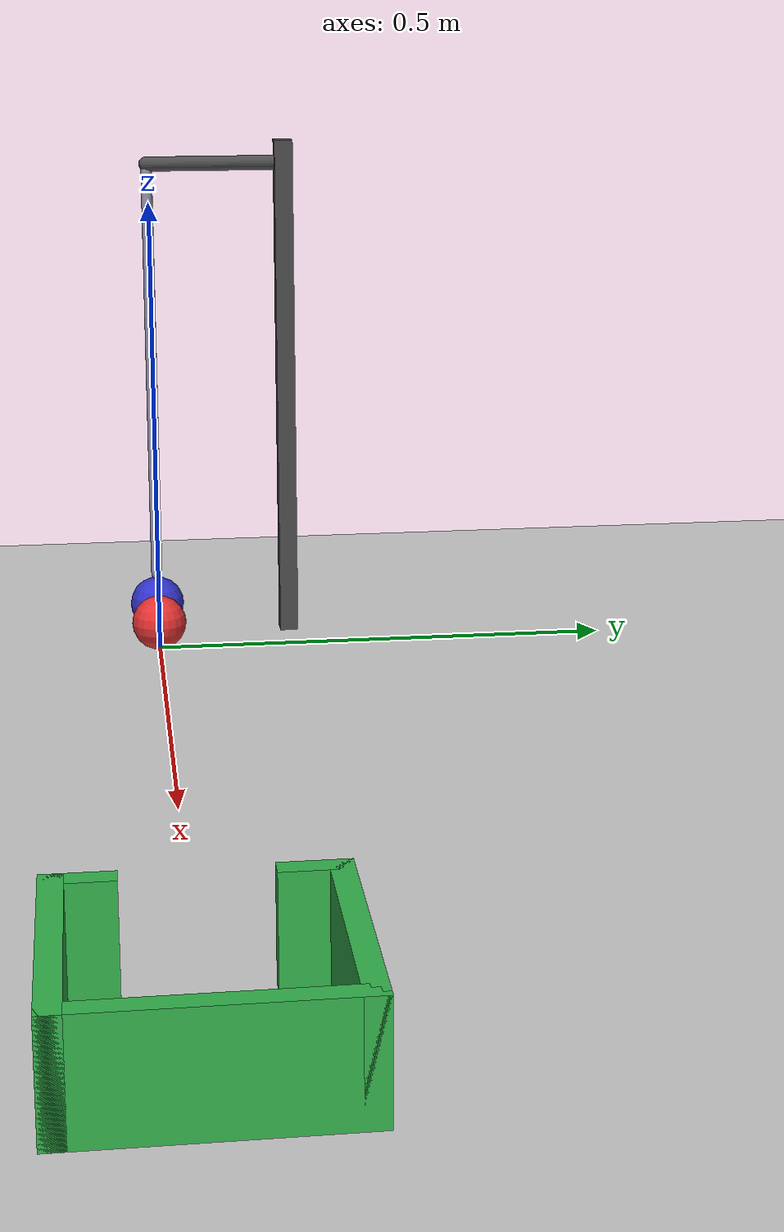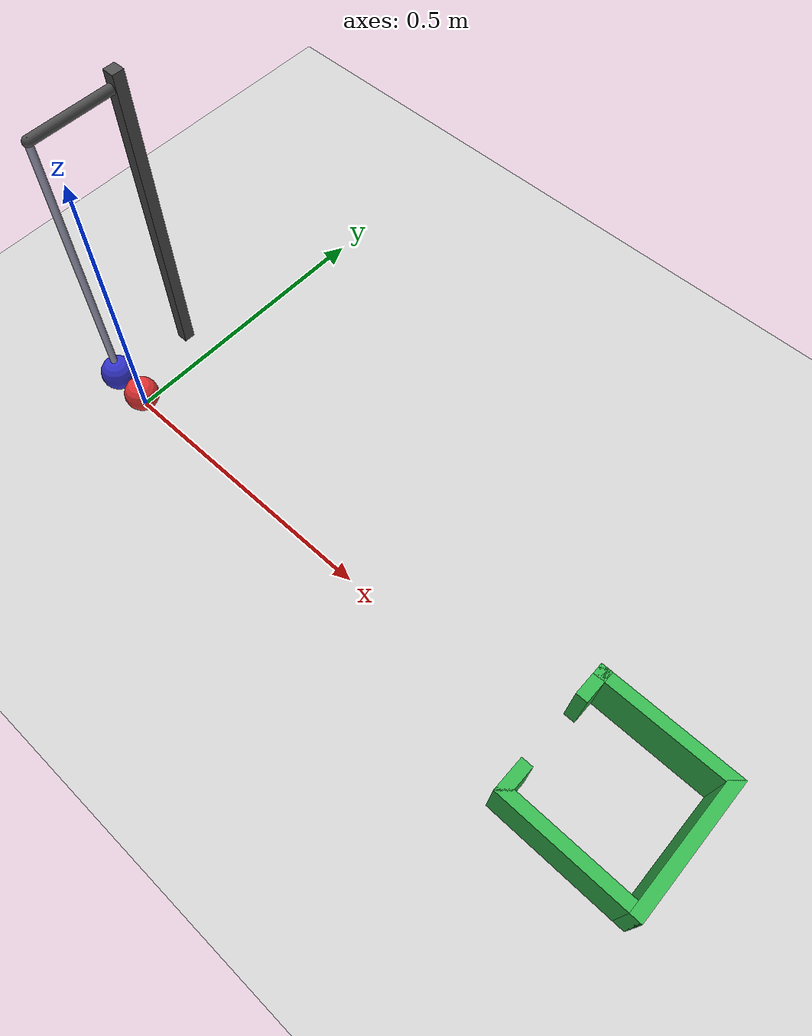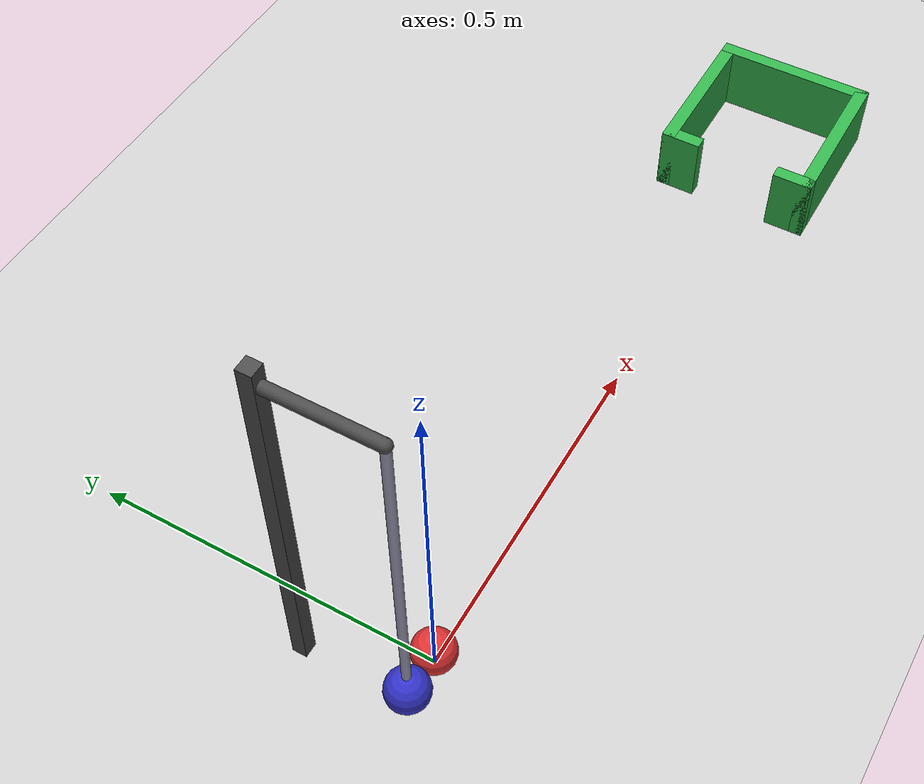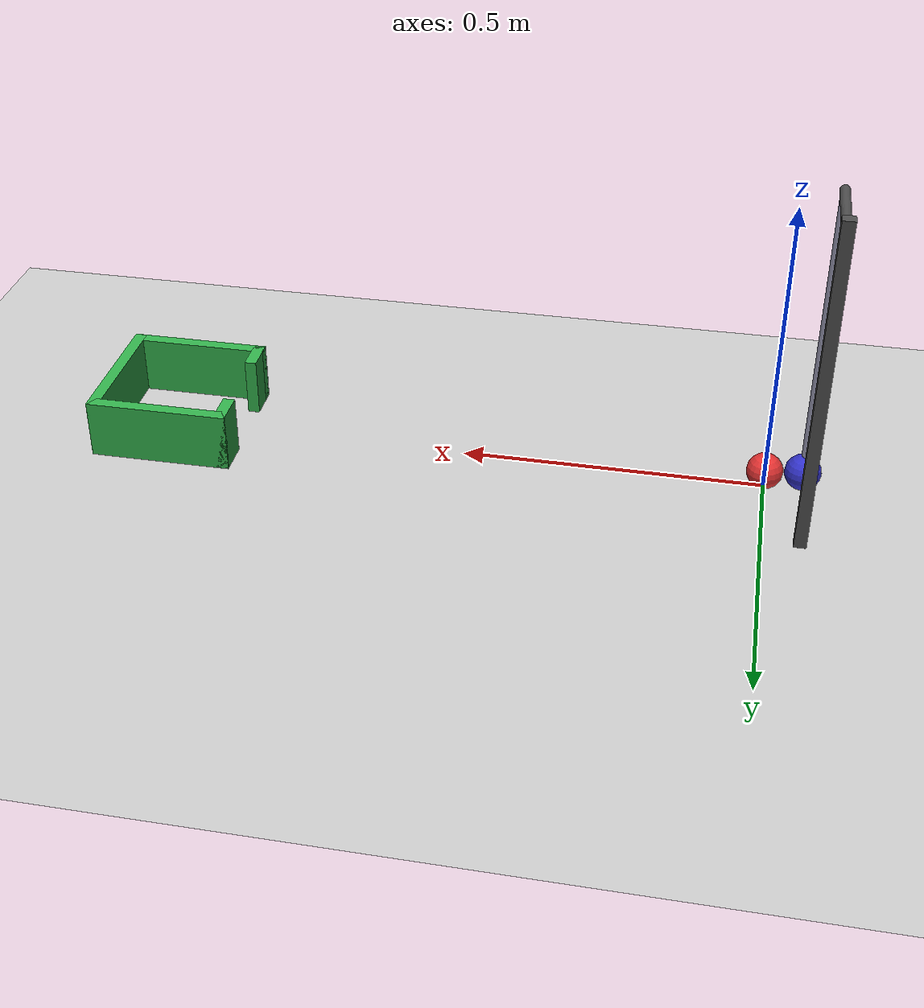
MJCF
<mujoco model="pendulum_ball_cup">
  <option timestep="0.002" gravity="0 0 -9.81"/>
  <worldbody>
    <light name="sun" pos="0.5 -1 2" dir="0 0.5 -1" directional="true"/>
    <geom name="floor" type="plane" pos="0 0 0" size="3 3 0.1" rgba="0.8 0.8 0.8 1"/>
    <geom name="stand_post" type="box" pos="-0.061 0.15 0.28" size="0.01 0.01 0.28" contype="0" conaffinity="0" rgba="0.3 0.3 0.3 1"/>
    <geom name="stand_arm" type="capsule" fromto="-0.061 0.15 0.535 -0.061 0 0.535" size="0.008" contype="0" conaffinity="0" rgba="0.3 0.3 0.3 1"/>
    <body name="pendulum" pos="-0.061 0 0.535">
      <joint name="pendulum_hinge" type="hinge" axis="0 1 0" pos="0 0 0"/>
      <geom name="pendulum_rod" type="capsule" fromto="0 0 0 0 0 -0.465" size="0.006" density="1000" rgba="0.6 0.6 0.7 1"/>
      <geom name="pendulum_bob" type="sphere" pos="0 0 -0.5" size="0.03" density="8000" rgba="0.2 0.2 0.8 1"/>
    </body>
    <body name="ball" pos="0 0 0.03">
      <freejoint name="ball_free"/>
      <geom name="ball" type="sphere" size="0.03" density="1000" condim="6" friction="0.8 0.005 0.0003" rgba="0.9 0.2 0.2 1"/>
    </body>
    <body name="cup" pos="1 0 0">
      <geom name="cup_back" type="box" pos="0.11 0 0.05" size="0.01 0.12 0.05" rgba="0.2 0.7 0.3 1"/>
      <geom name="cup_left" type="box" pos="0 0.11 0.05" size="0.12 0.01 0.05" rgba="0.2 0.7 0.3 1"/>
      <geom name="cup_right" type="box" pos="0 -0.11 0.05" size="0.12 0.01 0.05" rgba="0.2 0.7 0.3 1"/>
      <geom name="cup_front_left" type="box" pos="-0.11 0.09 0.05" size="0.01 0.03 0.05" rgba="0.2 0.7 0.3 1"/>
      <geom name="cup_front_right" type="box" pos="-0.11 -0.09 0.05" size="0.01 0.03 0.05" rgba="0.2 0.7 0.3 1"/>
    </body>
  </worldbody>
  <keyframe>
    <key name="start" qpos="0.4363 0 0 0.03 1 0 0 0" qvel="0 0 0 0 0 0 0"/>
  </keyframe>
</mujoco>
